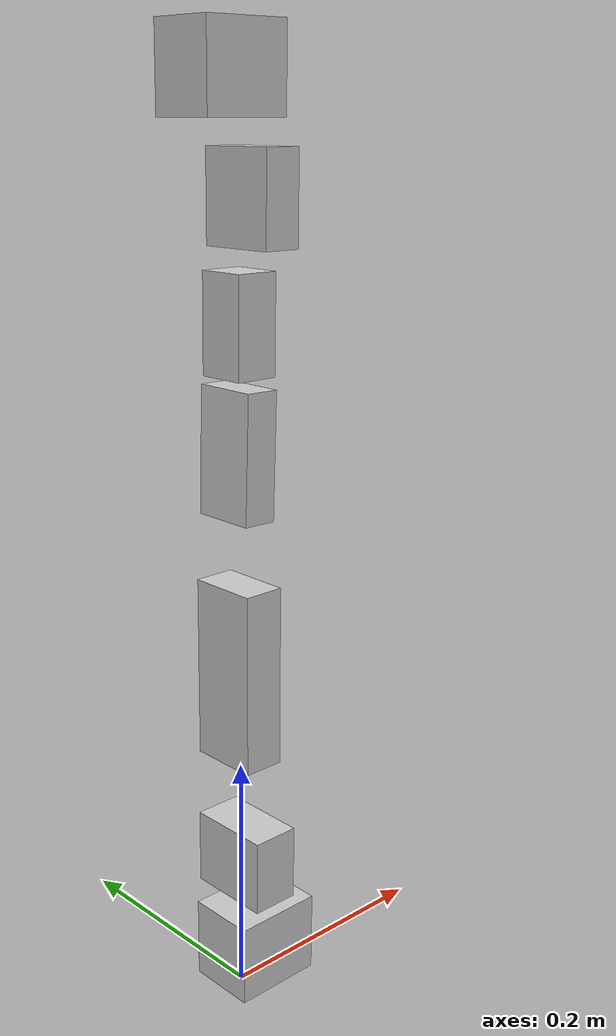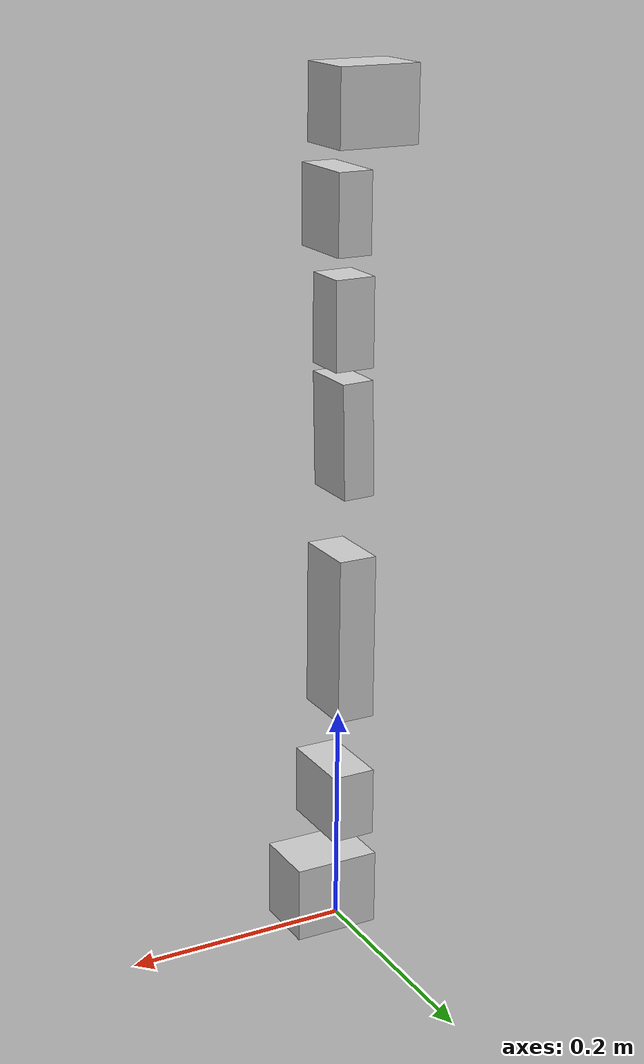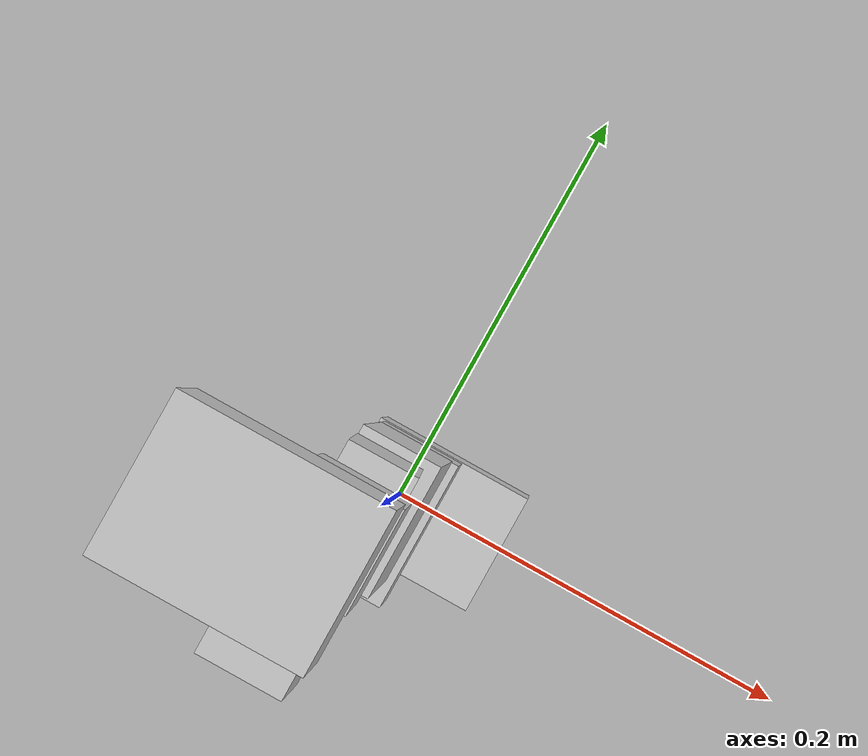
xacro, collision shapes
<?xml version="1.0"?>
<!-- Revolute-Revolute Manipulator -->
<!--
Copied and modified from ROS1 example -
https://github.com/ros-simulation/gazebo_ros_demos/blob/kinetic-devel/rrbot_description/urdf/rrbot.xacro
-->
<robot xmlns:xacro="http://www.ros.org/wiki/xacro" name="robot1_serial">
  <xacro:arg name="prefix" default="" />

  <xacro:include filename="$(find escalador_description_serial_1)/urdf/escalador_serial_1_description.urdf.xacro" />

  <link name="odom1"/>

  <xacro:robot1 parent="odom1" prefix="$(arg prefix)">
    <origin xyz="0 0 0" rpy="0 0 0" />
  </xacro:robot1>
</robot>

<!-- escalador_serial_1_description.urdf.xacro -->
<robot xmlns:xacro="http://www.ros.org/wiki/xacro">

  <xacro:macro name="robot1" params="parent prefix *origin">
  <joint name="${prefix}base_joint" type="fixed">
    <xacro:insert_block name="origin" />
    <parent link="${parent}"/>
    <child link="${prefix}LINK_1" />
  </joint>

  <link name="${prefix}end-effector"/>
  <link name="${prefix}end-dummy"/>
  <joint name="dummy_joint" type="fixed">
    <limit upper="0" lower="0" effort="0" velocity="0"/>
    <origin rpy="0.0 3.14 0.0" xyz="0.0 0.0 0.000"/>
    <parent link="${prefix}end-effector"/>
    <child link="${prefix}end-dummy"/>
  </joint>
  <joint name="end_joint" type="fixed">
    <limit upper="0" lower="0" effort="0" velocity="0"/>
    <origin rpy="0.0 0.0 0.0" xyz="0.0 0.0 0.07100"/>
    <parent link="${prefix}LINK_7"/>
    <child link="${prefix}end-effector"/>
  </joint>

  <joint name="J1" type="revolute">
    <limit lower="-6.28000" upper="6.28000" effort="0.00000" velocity="0.00000"/>
    <origin rpy="-0.00000 -0.00000 3.14159" xyz="0.00000 -0.00000 0.07100"/>
    <parent link="${prefix}LINK_1"/>
    <child link="${prefix}LINK_2"/>
    <axis xyz="0.00000 0.00000 1.00000"/>
  </joint>
  <joint name="J2" type="revolute">
    <limit lower="-3.14000" upper="3.14000" effort="0.00000" velocity="0.00000"/>
    <origin rpy="-1.57080 0.00000 -3.14159" xyz="0.00000 0.00000 0.10900"/>
    <parent link="${prefix}LINK_2"/>
    <child link="${prefix}LINK_3"/>
    <axis xyz="0.00000 0.00000 1.00000"/>
  </joint>
  <joint name="J3" type="revolute">
    <limit lower="-3.14000" upper="3.14000" effort="0.00000" velocity="0.00000"/>
    <origin rpy="-0.00000 0.00000 0.00000" xyz="0.00000 -0.20000 0.00000"/>
    <parent link="${prefix}LINK_3"/>
    <child link="${prefix}LINK_4"/>
    <axis xyz="0.00000 0.00000 1.00000"/>
  </joint>
  <joint name="J4" type="revolute">
    <limit lower="-6.28000" upper="6.28000" effort="0.00000" velocity="0.00000"/>
    <origin rpy="1.57080 0.00000 0.00000" xyz="-0.00000 -0.13800 -0.00000"/>
    <parent link="${prefix}LINK_4"/>
    <child link="${prefix}LINK_5"/>
    <axis xyz="0.00000 0.00000 1.00000"/>
  </joint>
  <joint name="J5" type="revolute">
    <limit lower="-3.14000" upper="3.14000" effort="0.00000" velocity="0.00000"/>
    <origin rpy="-1.57080 0.00000 0.00000" xyz="0.00000 0.00000 0.06200"/>
    <parent link="${prefix}LINK_5"/>
    <child link="${prefix}LINK_6"/>
    <axis xyz="0.00000 0.00000 1.00000"/>
  </joint>
  <joint name="J6" type="revolute">
    <limit lower="-6.28000" upper="6.28000" effort="0.00000" velocity="0.00000"/>
    <origin rpy="1.57080 0.00000 0.00000" xyz="-0.00000 -0.10900 -0.00000"/>
    <parent link="${prefix}LINK_6"/>
    <child link="${prefix}LINK_7"/>
    <axis xyz="0.00000 0.00000 1.00000"/>
  </joint>
  <link name="${prefix}LINK_1">
    <collision name="LINK_1_collision">
      <origin rpy="0.00000 0.00000 0.00000" xyz="0.01529 -0.00000 0.03544"/>
      <geometry>
        <box size="0.07660 0.05818 0.06860"/>
      </geometry>
    </collision>
    <inertial>
      <origin xyz="-0.011218 -0.000000 0.018785" rpy="0 0 0"/>
      <mass value="0.375"/>
      <inertia ixx="0.000108994"
              ixy="-0.000000000" iyy="0.000198249"
              ixz="0.000016726" iyz="-0.000000000" izz="0.000200988" />
    </inertial>
    <visual name="LINK_1_visual">
      <origin rpy="0.00000 0.00000 -0.00000" xyz="-0.00000 -0.00000 0.00000"/>
      <material name="SILVER"/>
      <geometry>
        <mesh filename="file://$(find escalador_description_serial_1)/meshes/pata_1.dae" scale="0.00100 0.00100 0.00100"/>
      </geometry>
    </visual>
  </link>
  <link name="${prefix}LINK_2">
    <collision name="LINK_2_collision">
      <origin rpy="1.57080 -0.00000 0.00000" xyz="0.00000 0.00606 0.05094"/>
      <geometry>
        <box size="0.03961 0.06205 0.07038"/>
      </geometry>
    </collision>
    <inertial>
      <origin xyz="-0.000005 -0.008676 0.052092" rpy="0 0 0"/>
      <mass value="0.354"/>
      <inertia ixx="0.000223854"
              ixy="0.000000016" iyy="0.000146294"
              ixz="-0.000000107" iyz="-0.000034608" izz="0.000151022" />
    </inertial>
    <visual name="LINK_2_visual">
      <origin rpy="1.57080 0.00000 0.00000" xyz="0.00000 0.00000 0.00000"/>
      <material name="ROBO"/>
      <geometry>
        <mesh filename="file://$(find escalador_description_serial_1)/meshes/link_1_5.073.dae" scale="0.00100 0.00100 0.00100"/>
      </geometry>
    </visual>
  </link>
  <link name="${prefix}LINK_3">
    <collision name="LINK_3_collision">
      <origin rpy="0.00000 0.00000 3.13973" xyz="0.00013 -0.10084 0.00235"/>
      <geometry>
        <box size="0.03412 0.14763 0.05773"/>
      </geometry>
    </collision>
    <inertial>
      <origin xyz="-0.000017 -0.000742 0.101033" rpy="0 0 0"/>
      <mass value="0.477"/>
      <inertia ixx="0.002864655"
                ixy="-0.000000004" iyy="0.002867671"
                ixz="0.000000689" iyz="-0.000000419" izz="0.000140001" />
    </inertial>
    <visual name="LINK_3_visual">
      <origin rpy="0.00000 0.00000 -2.61870" xyz="-0.00000 0.00000 0.00000"/>
      <material name="SILVER"/>
      <geometry>
        <mesh filename="file://$(find escalador_description_serial_1)/meshes/link_2.dae" scale="0.00100 0.00100 0.00100"/>
      </geometry>
    </visual>
  </link>
  <link name="${prefix}LINK_4">
    <collision name="LINK_4_collision">
      <origin rpy="-0.00000 -0.00000 0.02402" xyz="-0.00013 -0.07778 0.00292"/>
      <geometry>
        <box size="0.02774 0.09960 0.05199"/>
      </geometry>
    </collision>
    <inertial>
        <origin xyz="0.000000 -0.009079 0.081987" rpy="0 0 0"/>
        <mass value="0.372"/>
        <inertia ixx="0.000135253"
                ixy="-0.000000000" iyy="0.000047636"
                ixz="-0.000000000" iyz="0.000000471" izz="0.000162513" />
    </inertial>
    <visual name="LINK_4_visual">
      <origin rpy="0.00000 0.00000 -0.52360" xyz="0.00000 0.00000 0.00000"/>
      <material name="SILVER"/>
      <geometry>
        <mesh filename="file://$(find escalador_description_serial_1)/meshes/link_3.076.dae" scale="0.00100 0.00100 0.00100"/>
      </geometry>
    </visual>
  </link>
  <link name="${prefix}LINK_5">
    <collision name="LINK_5_collision">
      <origin rpy="-1.57080 0.00509 0.00000" xyz="-0.00008 0.00105 0.03565"/>
      <geometry>
        <box size="0.03510 0.07617 0.03941"/>
      </geometry>
    </collision>
    <inertial>
        <origin xyz="0.000000 -0.001015 -0.021991" rpy="0 0 0"/>
        <mass value="0.202"/>
        <inertia ixx="0.000117912"
                ixy="-0.000000000" iyy="0.000105186"
                ixz="-0.000000000" iyz="0.000003166" izz="0.000048390" />
      </inertial>
    <visual name="LINK_5_visual">
      <origin rpy="-1.57080 -0.52299 0.00000" xyz="0.00000 -0.00000 -0.00000"/>
      <material name="ROBO"/>
      <geometry>
        <mesh filename="file://$(find escalador_description_serial_1)/meshes/link_4.003.dae" scale="0.00100 0.00100 0.00100"/>
      </geometry>
    </visual>
  </link>
  <link name="${prefix}LINK_6">
    <collision name="LINK_6_collision">
      <origin rpy="0.00000 0.00000 0.00000" xyz="-0.00004 -0.06277 -0.01268"/>
      <geometry>
        <box size="0.03018 0.06809 0.06256"/>
      </geometry>
    </collision>
    <inertial>
        <origin xyz="-0.000005 -0.008676 0.052092" rpy="0 0 0"/>
        <mass value="0.354"/>
        <inertia ixx="0.000223854"
                ixy="0.000000016" iyy="0.000146294"
                ixz="-0.000000107" iyz="-0.000034608" izz="0.000151022" />
    </inertial>
    <visual name="LINK_6_visual">
      <origin rpy="-0.00000 0.00000 0.00000" xyz="-0.00000 0.00000 0.00000"/>
      <material name="SILVER"/>
      <geometry>
        <mesh filename="file://$(find escalador_description_serial_1)/meshes/link_1_5.003.dae" scale="0.00100 0.00100 0.00100"/>
      </geometry>
    </visual>
  </link>
  <link name="${prefix}LINK_7">
    <collision name="LINK_7_collision">
      <origin rpy="3.14159 -0.00000 3.14159" xyz="-0.01628 0.00000 0.03790"/>
      <geometry>
        <box size="0.07085 0.05381 0.06345"/>
      </geometry>
    </collision>
    <inertial>
        <origin xyz="-0.011218 -0.000000 0.018785" rpy="0 0 0"/>
        <mass value="0.375"/>
        <inertia ixx="0.000108994"
                ixy="-0.000000000" iyy="0.000198249"
                ixz="0.000016726" iyz="-0.000000000" izz="0.000200988" />
    </inertial>
    <visual name="LINK_7_visual">
      <origin rpy="3.14159 -0.00000 3.14159" xyz="0.00000 0.00000 0.00000"/>
      <material name="ROBO"/>
      <geometry>
        <mesh filename="file://$(find escalador_description_serial_1)/meshes/pata_2.dae" scale="0.00100 0.00100 0.00100"/>
      </geometry>
    </visual>
  </link>

  <material name="ROBO">
    <color rgba="0.80000 0.80000 0.80000 1.00000"/>
  </material>
  <material name="SILVER">
    <color rgba="0.80000 0.80000 0.80000 1.00000"/>
  </material>
  </xacro:macro>
</robot>
